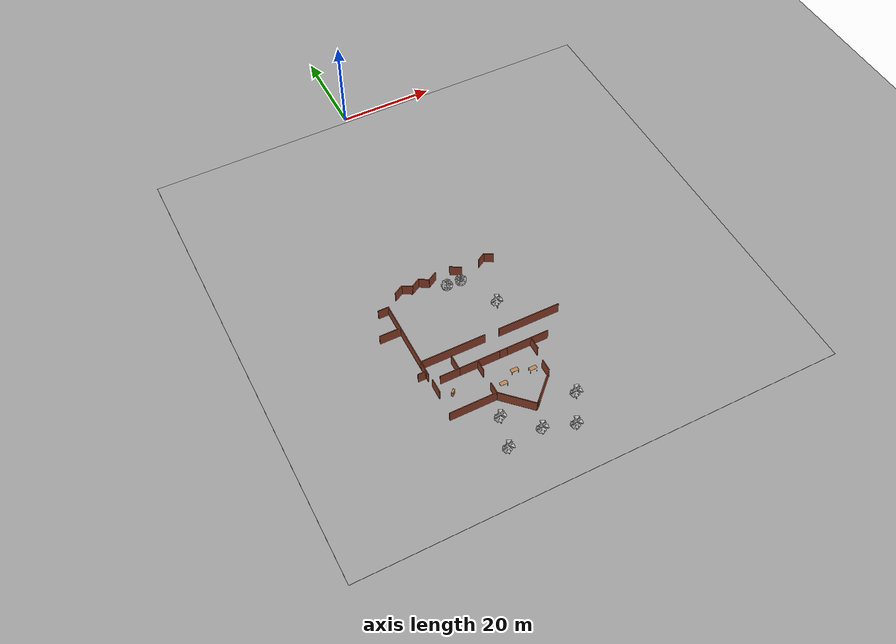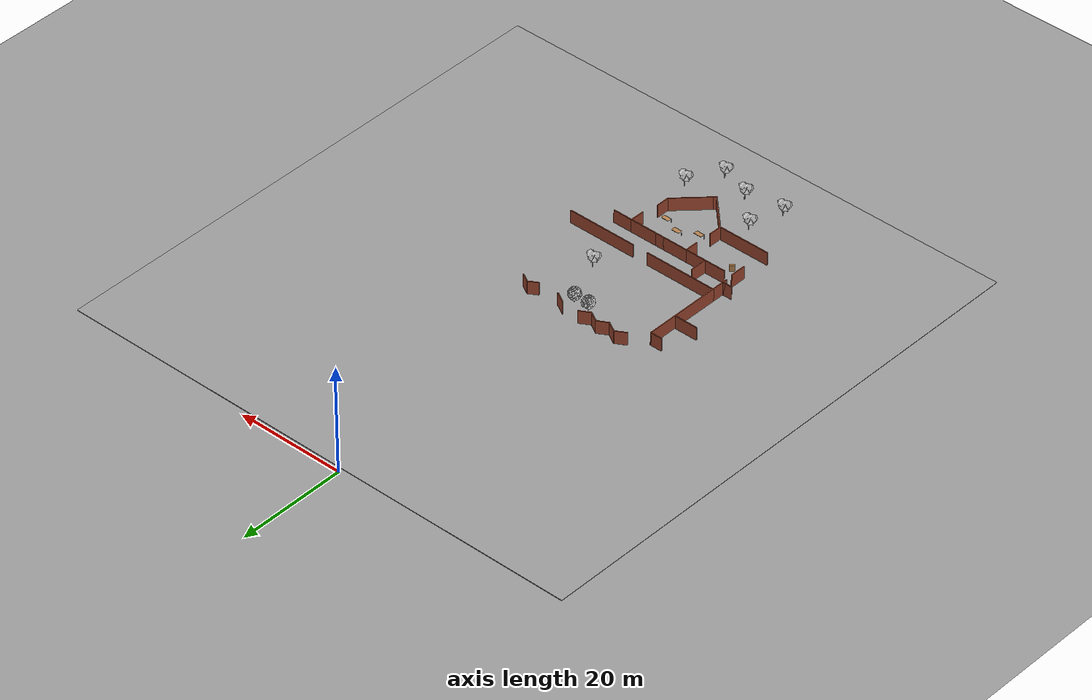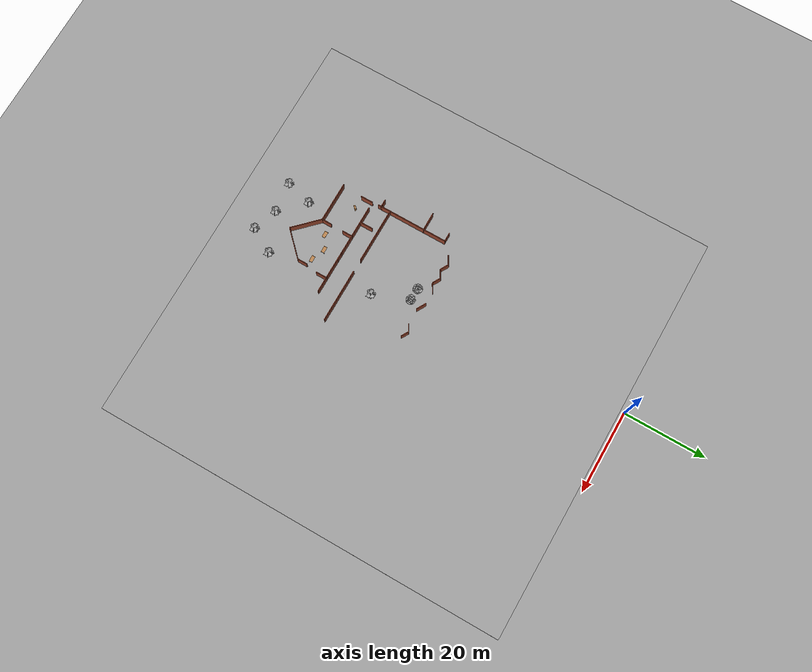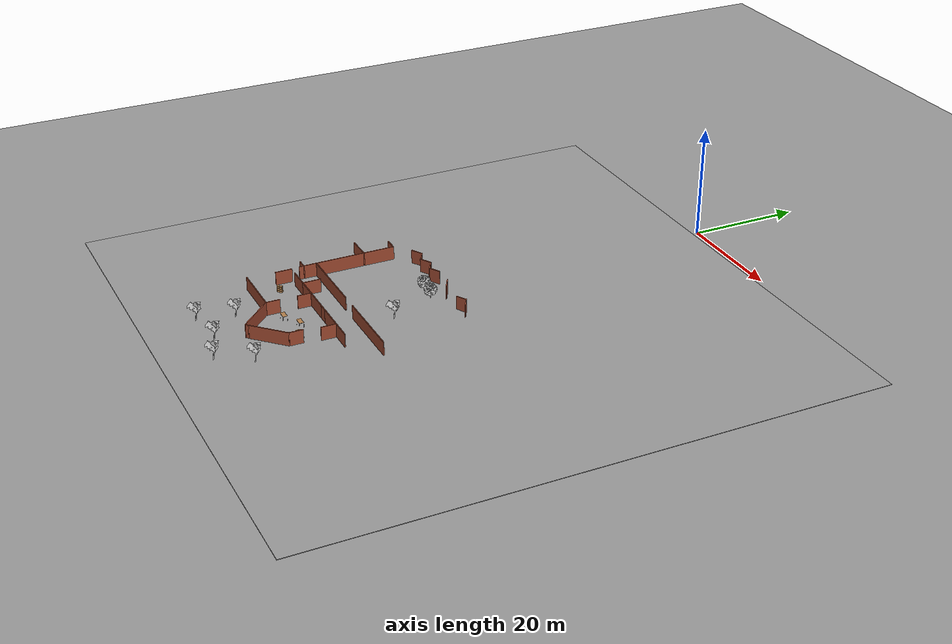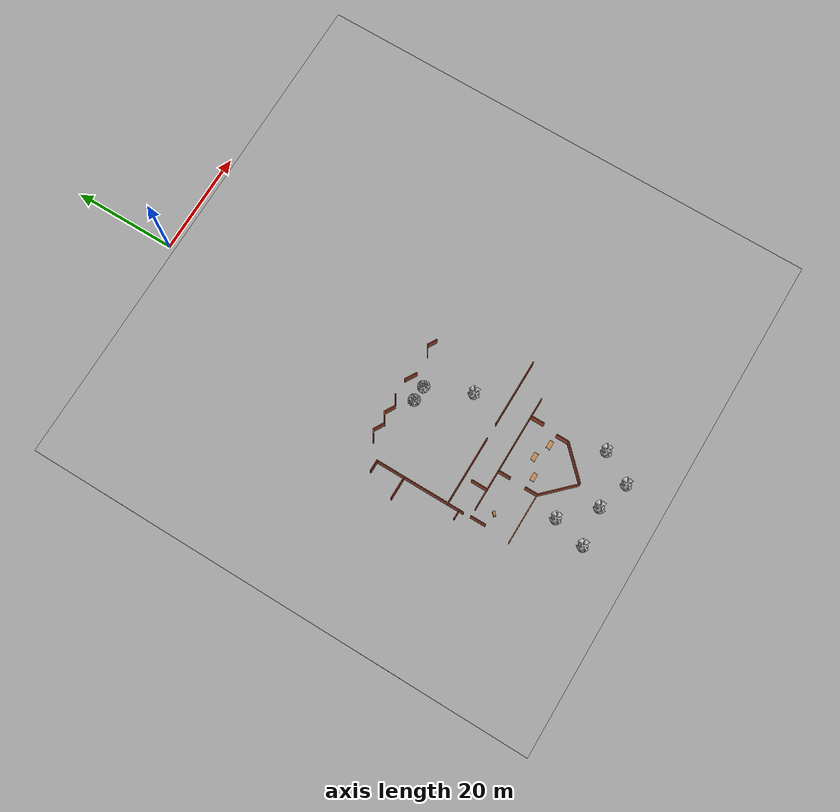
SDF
<sdf version="1.6">
 <world name="default">
  <model name="maze_rect_3">
   <pose>4e-06 -9.9e-05 0 0 -0 1.57001</pose>
   <link name="Wall_30">
    <collision name="Wall_30_Collision">
     <geometry><box><size>2 0.15 2.5</size></box></geometry>
     <pose>0 0 1.25 0 -0 0</pose>
    </collision>
    <visual name="Wall_30_Visual">
     <pose>0 0 1.25 0 -0 0</pose>
     <geometry><box><size>2 0.15 2.5</size></box></geometry>
     <material>
      <script><uri>file://media/materials/scripts/gazebo.material</uri><name>Gazebo/Bricks</name></script>
      <ambient>1 1 1 1</ambient>
     </material>
     <meta><layer>0</layer></meta>
    </visual>
    <pose>-50.7568 -8.90015 0 0 -0 1.0472</pose>
   </link>
   <link name="Wall_31">
    <collision name="Wall_31_Collision">
     <geometry><box><size>2 0.15 2.5</size></box></geometry>
     <pose>0 0 1.25 0 -0 0</pose>
    </collision>
    <visual name="Wall_31_Visual">
     <pose>0 0 1.25 0 -0 0</pose>
     <geometry><box><size>2 0.15 2.5</size></box></geometry>
     <material>
      <script><uri>file://media/materials/scripts/gazebo.material</uri><name>Gazebo/Bricks</name></script>
      <ambient>1 1 1 1</ambient>
     </material>
     <meta><layer>0</layer></meta>
    </visual>
    <pose>-50.7568 -7.298 0 0 -0 2.0944</pose>
   </link>
   <link name="Wall_34">
    <collision name="Wall_34_Collision">
     <geometry><box><size>2.5 0.15 2.5</size></box></geometry>
     <pose>0 0 1.25 0 -0 0</pose>
    </collision>
    <visual name="Wall_34_Visual">
     <pose>0 0 1.25 0 -0 0</pose>
     <geometry><box><size>2.5 0.15 2.5</size></box></geometry>
     <material>
      <script><uri>file://media/materials/scripts/gazebo.material</uri><name>Gazebo/Bricks</name></script>
      <ambient>1 1 1 1</ambient>
     </material>
     <meta><layer>0</layer></meta>
    </visual>
    <pose>-50.7568 -1.62553 0 0 -0 1.0472</pose>
   </link>
   <link name="Wall_37">
    <collision name="Wall_37_Collision">
     <geometry><box><size>2.25 0.15 2.5</size></box></geometry>
     <pose>0 0 1.25 0 -0 0</pose>
    </collision>
    <visual name="Wall_37_Visual">
     <pose>0 0 1.25 0 -0 0</pose>
     <geometry><box><size>2.25 0.15 2.5</size></box></geometry>
     <material>
      <script><uri>file://media/materials/scripts/gazebo.material</uri><name>Gazebo/Bricks</name></script>
      <ambient>1 1 1 1</ambient>
     </material>
     <meta><layer>0</layer></meta>
    </visual>
    <pose>-50.6943 3.50567 0 0 -0 2.0944</pose>
   </link>
   <link name="Wall_38">
    <collision name="Wall_38_Collision">
     <geometry><box><size>2.25 0.15 2.5</size></box></geometry>
     <pose>0 0 1.25 0 -0 0</pose>
    </collision>
    <visual name="Wall_38_Visual">
     <pose>0 0 1.25 0 -0 0</pose>
     <geometry><box><size>2.25 0.15 2.5</size></box></geometry>
     <material>
      <script><uri>file://media/materials/scripts/gazebo.material</uri><name>Gazebo/Bricks</name></script>
      <ambient>1 1 1 1</ambient>
     </material>
     <meta><layer>0</layer></meta>
    </visual>
    <pose>-50.6943 5.32432 0 0 -0 1.0472</pose>
   </link>
   <link name="Wall_39">
    <collision name="Wall_39_Collision">
     <geometry><box><size>2.25 0.15 2.5</size></box></geometry>
     <pose>0 0 1.25 0 -0 0</pose>
    </collision>
    <visual name="Wall_39_Visual">
     <pose>0 0 1.25 0 -0 0</pose>
     <geometry><box><size>2.25 0.15 2.5</size></box></geometry>
     <material>
      <script><uri>file://media/materials/scripts/gazebo.material</uri><name>Gazebo/Bricks</name></script>
      <ambient>1 1 1 1</ambient>
     </material>
     <meta><layer>0</layer></meta>
    </visual>
    <pose>-50.6943 7.14297 0 0 -0 2.0944</pose>
   </link>
   <link name="Wall_40">
    <collision name="Wall_40_Collision">
     <geometry><box><size>2.25 0.15 2.5</size></box></geometry>
     <pose>0 0 1.25 0 -0 0</pose>
    </collision>
    <visual name="Wall_40_Visual">
     <pose>0 0 1.25 0 -0 0</pose>
     <geometry><box><size>2.25 0.15 2.5</size></box></geometry>
     <material>
      <script><uri>file://media/materials/scripts/gazebo.material</uri><name>Gazebo/Bricks</name></script>
      <ambient>1 1 1 1</ambient>
     </material>
     <meta><layer>0</layer></meta>
    </visual>
    <pose>-50.6943 8.96163 0 0 -0 1.0472</pose>
   </link>
   <link name="Wall_41">
    <collision name="Wall_41_Collision">
     <geometry><box><size>2.25 0.15 2.5</size></box></geometry>
     <pose>0 0 1.25 0 -0 0</pose>
    </collision>
    <visual name="Wall_41_Visual">
     <pose>0 0 1.25 0 -0 0</pose>
     <geometry><box><size>2.25 0.15 2.5</size></box></geometry>
     <material>
      <script><uri>file://media/materials/scripts/gazebo.material</uri><name>Gazebo/Bricks</name></script>
      <ambient>1 1 1 1</ambient>
     </material>
     <meta><layer>0</layer></meta>
    </visual>
    <pose>-50.6943 10.7803 0 0 -0 2.0944</pose>
   </link>
   <static>1</static>
  </model>
  <model name="map_palace_v2_model_1_0">
   <pose>-3.1e-05 -55 0 0 -0 3.14</pose>
   <link name="Wall_203">
    <collision name="Wall_203_Collision">
     <geometry><box><size>3.75 0.15 2.5</size></box></geometry>
     <pose>0 0 1.25 0 -0 0</pose>
    </collision>
    <visual name="Wall_203_Visual">
     <pose>0 0 1.25 0 -0 0</pose>
     <geometry><box><size>3.75 0.15 2.5</size></box></geometry>
     <material>
      <script><uri>file://media/materials/scripts/gazebo.material</uri><name>Gazebo/Bricks</name></script>
      <ambient>1 1 1 1</ambient>
     </material>
     <meta><layer>0</layer></meta>
    </visual>
    <pose>-8.18806 17.5809 0 0 -0 0</pose>
   </link>
   <link name="Wall_204">
    <collision name="Wall_204_Collision">
     <geometry><box><size>2.75 0.15 2.5</size></box></geometry>
     <pose>0 0 1.25 0 -0 0</pose>
    </collision>
    <visual name="Wall_204_Visual">
     <pose>0 0 1.25 0 -0 0</pose>
     <geometry><box><size>2.75 0.15 2.5</size></box></geometry>
     <material>
      <script><uri>file://media/materials/scripts/gazebo.material</uri><name>Gazebo/Bricks</name></script>
      <ambient>1 1 1 1</ambient>
     </material>
     <meta><layer>0</layer></meta>
    </visual>
    <pose>-6.38806 18.8809 0 0 -0 1.5708</pose>
   </link>
   <link name="Wall_206">
    <collision name="Wall_206_Collision">
     <geometry><box><size>5.25 0.15 2.5</size></box></geometry>
     <pose>0 0 1.25 0 -0 0</pose>
    </collision>
    <visual name="Wall_206_Visual">
     <pose>0 0 1.25 0 -0 0</pose>
     <geometry><box><size>5.25 0.15 2.5</size></box></geometry>
     <material>
      <script><uri>file://media/materials/scripts/gazebo.material</uri><name>Gazebo/Bricks</name></script>
      <ambient>1 1 1 1</ambient>
     </material>
     <meta><layer>0</layer></meta>
    </visual>
    <pose>-3.83806 17.5809 0 0 -0 0</pose>
   </link>
   <link name="Wall_208">
    <collision name="Wall_208_Collision">
     <geometry><box><size>1.75 0.15 2.5</size></box></geometry>
     <pose>0 0 1.25 0 -0 0</pose>
    </collision>
    <visual name="Wall_208_Visual">
     <pose>0 0 1.25 0 -0 0</pose>
     <geometry><box><size>1.75 0.15 2.5</size></box></geometry>
     <material>
      <script><uri>file://media/materials/scripts/gazebo.material</uri><name>Gazebo/Bricks</name></script>
      <ambient>1 1 1 1</ambient>
     </material>
     <meta><layer>0</layer></meta>
    </visual>
    <pose>-0.488058 17.5809 0 0 -0 0</pose>
   </link>
   <link name="Wall_209">
    <collision name="Wall_209_Collision">
     <geometry><box><size>4.75 0.15 2.5</size></box></geometry>
     <pose>0 0 1.25 0 -0 0</pose>
    </collision>
    <visual name="Wall_209_Visual">
     <pose>0 0 1.25 0 -0 0</pose>
     <geometry><box><size>4.75 0.15 2.5</size></box></geometry>
     <material>
      <script><uri>file://media/materials/scripts/gazebo.material</uri><name>Gazebo/Bricks</name></script>
      <ambient>1 1 1 1</ambient>
     </material>
     <meta><layer>0</layer></meta>
    </visual>
    <pose>2.61194 17.5809 0 0 -0 0</pose>
   </link>
   <link name="Wall_210">
    <collision name="Wall_210_Collision">
     <geometry><box><size>2.5 0.15 2.5</size></box></geometry>
     <pose>0 0 1.25 0 -0 0</pose>
    </collision>
    <visual name="Wall_210_Visual">
     <pose>0 0 1.25 0 -0 0</pose>
     <geometry><box><size>2.5 0.15 2.5</size></box></geometry>
     <material>
      <script><uri>file://media/materials/scripts/gazebo.material</uri><name>Gazebo/Bricks</name></script>
      <ambient>1 1 1 1</ambient>
     </material>
     <meta><layer>0</layer></meta>
    </visual>
    <pose>4.91194 18.7559 0 0 -0 1.5708</pose>
   </link>
   <link name="Wall_212">
    <collision name="Wall_212_Collision">
     <geometry><box><size>4 0.15 2.5</size></box></geometry>
     <pose>0 0 1.25 0 -0 0</pose>
    </collision>
    <visual name="Wall_212_Visual">
     <pose>0 0 1.25 0 -0 0</pose>
     <geometry><box><size>4 0.15 2.5</size></box></geometry>
     <material>
      <script><uri>file://media/materials/scripts/gazebo.material</uri><name>Gazebo/Bricks</name></script>
      <ambient>1 1 1 1</ambient>
     </material>
     <meta><layer>0</layer></meta>
    </visual>
    <pose>6.83694 17.5809 0 0 -0 0</pose>
   </link>
   <link name="Wall_213">
    <collision name="Wall_213_Collision">
     <geometry><box><size>3.25 0.15 2.5</size></box></geometry>
     <pose>0 0 1.25 0 -0 0</pose>
    </collision>
    <visual name="Wall_213_Visual">
     <pose>0 0 1.25 0 -0 0</pose>
     <geometry><box><size>3.25 0.15 2.5</size></box></geometry>
     <material>
      <script><uri>file://media/materials/scripts/gazebo.material</uri><name>Gazebo/Bricks</name></script>
      <ambient>1 1 1 1</ambient>
     </material>
     <meta><layer>0</layer></meta>
    </visual>
    <pose>8.76194 16.0309 0 0 -0 -1.5708</pose>
   </link>
   <link name="Wall_215">
    <collision name="Wall_215_Collision">
     <geometry><box><size>4 0.15 2.5</size></box></geometry>
     <pose>0 0 1.25 0 -0 0</pose>
    </collision>
    <visual name="Wall_215_Visual">
     <pose>0 0 1.25 0 -0 0</pose>
     <geometry><box><size>4 0.15 2.5</size></box></geometry>
     <material>
      <script><uri>file://media/materials/scripts/gazebo.material</uri><name>Gazebo/Bricks</name></script>
      <ambient>1 1 1 1</ambient>
     </material>
     <meta><layer>0</layer></meta>
    </visual>
    <pose>10.6869 17.5809 0 0 -0 0</pose>
   </link>
   <link name="Wall_217">
    <collision name="Wall_217_Collision">
     <geometry><box><size>3 0.15 2.5</size></box></geometry>
     <pose>0 0 1.25 0 -0 0</pose>
    </collision>
    <visual name="Wall_217_Visual">
     <pose>0 0 1.25 0 -0 0</pose>
     <geometry><box><size>3 0.15 2.5</size></box></geometry>
     <material>
      <script><uri>file://media/materials/scripts/gazebo.material</uri><name>Gazebo/Bricks</name></script>
      <ambient>1 1 1 1</ambient>
     </material>
     <meta><layer>0</layer></meta>
    </visual>
    <pose>14.2119 19.0059 0 0 -0 1.5708</pose>
   </link>
   <link name="Wall_221">
    <collision name="Wall_221_Collision">
     <geometry><box><size>3.25 0.15 2.5</size></box></geometry>
     <pose>0 0 1.25 0 -0 0</pose>
    </collision>
    <visual name="Wall_221_Visual">
     <pose>0 0 1.25 0 -0 0</pose>
     <geometry><box><size>3.25 0.15 2.5</size></box></geometry>
     <material>
      <script><uri>file://media/materials/scripts/gazebo.material</uri><name>Gazebo/Bricks</name></script>
      <ambient>1 1 1 1</ambient>
     </material>
     <meta><layer>0</layer></meta>
    </visual>
    <pose>14.3807 14.5475 0 0 -0 1.5708</pose>
   </link>
   <link name="Wall_223">
    <collision name="Wall_223_Collision">
     <geometry><box><size>0.5 0.15 2.5</size></box></geometry>
     <pose>0 0 1.25 0 -0 0</pose>
    </collision>
    <visual name="Wall_223_Visual">
     <pose>0 0 1.25 0 -0 0</pose>
     <geometry><box><size>0.5 0.15 2.5</size></box></geometry>
     <material>
      <script><uri>file://media/materials/scripts/gazebo.material</uri><name>Gazebo/Bricks</name></script>
      <ambient>1 1 1 1</ambient>
     </material>
     <meta><layer>0</layer></meta>
    </visual>
    <pose>14.5415 15.308 0 0 -0 0</pose>
   </link>
   <link name="Wall_224">
    <collision name="Wall_224_Collision">
     <geometry><box><size>1.5 0.15 2.5</size></box></geometry>
     <pose>0 0 1.25 0 -0 0</pose>
    </collision>
    <visual name="Wall_224_Visual">
     <pose>0 0 1.25 0 -0 0</pose>
     <geometry><box><size>1.5 0.15 2.5</size></box></geometry>
     <material>
      <script><uri>file://media/materials/scripts/gazebo.material</uri><name>Gazebo/Bricks</name></script>
      <ambient>1 1 1 1</ambient>
     </material>
     <meta><layer>0</layer></meta>
    </visual>
    <pose>15.3915 15.308 0 0 -0 0</pose>
   </link>
   <link name="Wall_23">
    <collision name="Wall_23_Collision">
     <geometry><box><size>13 0.15 2.5</size></box></geometry>
     <pose>0 0 1.25 0 -0 0</pose>
    </collision>
    <visual name="Wall_23_Visual">
     <pose>0 0 1.25 0 -0 0</pose>
     <geometry><box><size>13 0.15 2.5</size></box></geometry>
     <material>
      <script><uri>file://media/materials/scripts/gazebo.material</uri><name>Gazebo/Bricks</name></script>
      <ambient>1 1 1 1</ambient>
     </material>
     <meta><layer>0</layer></meta>
    </visual>
    <pose>-8.49431 12.9975 0 0 -0 0</pose>
   </link>
   <link name="Wall_235">
    <collision name="Wall_235_Collision">
     <geometry><box><size>4.5 0.15 2.5</size></box></geometry>
     <pose>0 0 1.25 0 -0 0</pose>
    </collision>
    <visual name="Wall_235_Visual">
     <pose>0 0 1.25 0 -0 0</pose>
     <geometry><box><size>4.5 0.15 2.5</size></box></geometry>
     <material>
      <script><uri>file://media/materials/scripts/gazebo.material</uri><name>Gazebo/Bricks</name></script>
      <ambient>1 1 1 1</ambient>
     </material>
     <meta><layer>0</layer></meta>
    </visual>
    <pose>16.5435 4.20704 0 0 -0 0</pose>
   </link>
   <link name="Wall_238">
    <collision name="Wall_238_Collision">
     <geometry><box><size>2.5 0.15 2.5</size></box></geometry>
     <pose>0 0 1.25 0 -0 0</pose>
    </collision>
    <visual name="Wall_238_Visual">
     <pose>0 0 1.25 0 -0 0</pose>
     <geometry><box><size>2.5 0.15 2.5</size></box></geometry>
     <material>
      <script><uri>file://media/materials/scripts/gazebo.material</uri><name>Gazebo/Bricks</name></script>
      <ambient>1 1 1 1</ambient>
     </material>
     <meta><layer>0</layer></meta>
    </visual>
    <pose>-5.81931 24.2725 0 0 -0 -1.5708</pose>
   </link>
   <link name="Wall_240">
    <collision name="Wall_240_Collision">
     <geometry><box><size>2.5 0.15 2.5</size></box></geometry>
     <pose>0 0 1.25 0 -0 0</pose>
    </collision>
    <visual name="Wall_240_Visual">
     <pose>0 0 1.25 0 -0 0</pose>
     <geometry><box><size>2.5 0.15 2.5</size></box></geometry>
     <material>
      <script><uri>file://media/materials/scripts/gazebo.material</uri><name>Gazebo/Bricks</name></script>
      <ambient>1 1 1 1</ambient>
     </material>
     <meta><layer>0</layer></meta>
    </visual>
    <pose>5.03069 24.2725 0 0 -0 -1.5708</pose>
   </link>
   <link name="Wall_242">
    <collision name="Wall_242_Collision">
     <geometry><box><size>0.726635 0.15 2.5</size></box></geometry>
     <pose>0 0 1.25 0 -0 0</pose>
    </collision>
    <visual name="Wall_242_Visual">
     <pose>0 0 1.25 0 -0 0</pose>
     <geometry><box><size>0.726635 0.15 2.5</size></box></geometry>
     <material>
      <script><uri>file://media/materials/scripts/gazebo.material</uri><name>Gazebo/Bricks</name></script>
      <ambient>1 1 1 1</ambient>
     </material>
     <meta><layer>0</layer></meta>
    </visual>
    <pose>-0.571086 30.6447 0 0 -0 0.660019</pose>
   </link>
   <link name="Wall_25">
    <collision name="Wall_25_Collision">
     <geometry><box><size>13.5 0.15 2.5</size></box></geometry>
     <pose>0 0 1.25 0 -0 0</pose>
    </collision>
    <visual name="Wall_25_Visual">
     <pose>0 0 1.25 0 -0 0</pose>
     <geometry><box><size>13.5 0.15 2.5</size></box></geometry>
     <material>
      <script><uri>file://media/materials/scripts/gazebo.material</uri><name>Gazebo/Bricks</name></script>
      <ambient>1 1 1 1</ambient>
     </material>
     <meta><layer>0</layer></meta>
    </visual>
    <pose>7.70569 12.9975 0 0 -0 0</pose>
   </link>
   <link name="Wall_26">
    <collision name="Wall_26_Collision">
     <geometry><box><size>14.5 0.15 2.5</size></box></geometry>
     <pose>0 0 1.25 0 -0 0</pose>
    </collision>
    <visual name="Wall_26_Visual">
     <pose>0 0 1.25 0 -0 0</pose>
     <geometry><box><size>14.5 0.15 2.5</size></box></geometry>
     <material>
      <script><uri>file://media/materials/scripts/gazebo.material</uri><name>Gazebo/Bricks</name></script>
      <ambient>1 1 1 1</ambient>
     </material>
     <meta><layer>0</layer></meta>
    </visual>
    <pose>14.3807 5.82246 0 0 -0 -1.5708</pose>
   </link>
   <link name="Wall_27">
    <collision name="Wall_27_Collision">
     <geometry><box><size>2.25 0.15 2.5</size></box></geometry>
     <pose>0 0 1.25 0 -0 0</pose>
    </collision>
    <visual name="Wall_27_Visual">
     <pose>0 0 1.25 0 -0 0</pose>
     <geometry><box><size>2.25 0.15 2.5</size></box></geometry>
     <material>
      <script><uri>file://media/materials/scripts/gazebo.material</uri><name>Gazebo/Bricks</name></script>
      <ambient>1 1 1 1</ambient>
     </material>
     <meta><layer>0</layer></meta>
    </visual>
    <pose>15.4307 -1.35254 0 0 -0 0</pose>
   </link>
   <link name="Wall_41">
    <collision name="Wall_41_Collision">
     <geometry><box><size>9.75 0.15 2.5</size></box></geometry>
     <pose>0 0 1.25 0 -0 0</pose>
    </collision>
    <visual name="Wall_41_Visual">
     <pose>0 0 1.25 0 -0 0</pose>
     <geometry><box><size>9.75 0.15 2.5</size></box></geometry>
     <material>
      <script><uri>file://media/materials/scripts/gazebo.material</uri><name>Gazebo/Bricks</name></script>
      <ambient>1 1 1 1</ambient>
     </material>
     <meta><layer>0</layer></meta>
    </visual>
    <pose>9.83069 25.4475 0 0 -0 3.14159</pose>
   </link>
   <link name="Wall_42">
    <collision name="Wall_42_Collision">
     <geometry><box><size>7.75 0.15 2.5</size></box></geometry>
     <pose>0 0 1.25 0 -0 0</pose>
    </collision>
    <visual name="Wall_42_Visual">
     <pose>0 0 1.25 0 -0 0</pose>
     <geometry><box><size>7.75 0.15 2.5</size></box></geometry>
     <material>
      <script><uri>file://media/materials/scripts/gazebo.material</uri><name>Gazebo/Bricks</name></script>
      <ambient>1 1 1 1</ambient>
     </material>
     <meta><layer>0</layer></meta>
    </visual>
    <pose>2.34368 28.1345 0 0 -0 2.35619</pose>
   </link>
   <link name="Wall_6">
    <collision name="Wall_6_Collision">
     <geometry><box><size>7.25 0.15 2.5</size></box></geometry>
     <pose>0 0 1.25 0 -0 0</pose>
    </collision>
    <visual name="Wall_6_Visual">
     <pose>0 0 1.25 0 -0 0</pose>
     <geometry><box><size>7.25 0.15 2.5</size></box></geometry>
     <material>
      <script><uri>file://media/materials/scripts/gazebo.material</uri><name>Gazebo/Bricks</name></script>
      <ambient>1 1 1 1</ambient>
     </material>
     <meta><layer>0</layer></meta>
    </visual>
    <pose>-3.30908 27.9577 0 0 -0 -2.35619</pose>
   </link>
   <static>1</static>
  </model>
  <model name="table">
   <static>1</static>
   <link name="link">
    <collision name="surface">
     <pose>0 0 1 0 -0 0</pose>
     <geometry><box><size>1.5 0.8 0.03</size></box></geometry>
     <surface><friction><ode><mu>0.6</mu><mu2>0.6</mu2></ode></friction></surface>
    </collision>
    <visual name="visual1">
     <pose>0 0 1 0 -0 0</pose>
     <geometry><box><size>1.5 0.8 0.03</size></box></geometry>
     <material>
      <script><uri>file://media/materials/scripts/gazebo.material</uri><name>Gazebo/Wood</name></script>
     </material>
    </visual>
    <collision name="front_left_leg">
     <pose>0.68 0.38 0.5 0 -0 0</pose>
     <geometry><cylinder><radius>0.02</radius><length>1</length></cylinder></geometry>
    </collision>
    <visual name="front_left_leg">
     <pose>0.68 0.38 0.5 0 -0 0</pose>
     <geometry><cylinder><radius>0.02</radius><length>1</length></cylinder></geometry>
     <material>
      <script><uri>file://media/materials/scripts/gazebo.material</uri><name>Gazebo/Grey</name></script>
     </material>
    </visual>
    <collision name="front_right_leg">
     <pose>0.68 -0.38 0.5 0 -0 0</pose>
     <geometry><cylinder><radius>0.02</radius><length>1</length></cylinder></geometry>
    </collision>
    <visual name="front_right_leg">
     <pose>0.68 -0.38 0.5 0 -0 0</pose>
     <geometry><cylinder><radius>0.02</radius><length>1</length></cylinder></geometry>
     <material>
      <script><uri>file://media/materials/scripts/gazebo.material</uri><name>Gazebo/Grey</name></script>
     </material>
    </visual>
    <collision name="back_right_leg">
     <pose>-0.68 -0.38 0.5 0 -0 0</pose>
     <geometry><cylinder><radius>0.02</radius><length>1</length></cylinder></geometry>
    </collision>
    <visual name="back_right_leg">
     <pose>-0.68 -0.38 0.5 0 -0 0</pose>
     <geometry><cylinder><radius>0.02</radius><length>1</length></cylinder></geometry>
     <material>
      <script><uri>file://media/materials/scripts/gazebo.material</uri><name>Gazebo/Grey</name></script>
     </material>
    </visual>
    <collision name="back_left_leg">
     <pose>-0.68 0.38 0.5 0 -0 0</pose>
     <geometry><cylinder><radius>0.02</radius><length>1</length></cylinder></geometry>
    </collision>
    <visual name="back_left_leg">
     <pose>-0.68 0.38 0.5 0 -0 0</pose>
     <geometry><cylinder><radius>0.02</radius><length>1</length></cylinder></geometry>
     <material>
      <script><uri>file://media/materials/scripts/gazebo.material</uri><name>Gazebo/Grey</name></script>
     </material>
    </visual>
   </link>
   <pose>0.611236 -76.6859 0 0 -0 0</pose>
  </model>
  <model name="table_0">
   <static>1</static>
   <link name="link">
    <collision name="surface">
     <pose>0 0 1 0 -0 0</pose>
     <geometry><box><size>1.5 0.8 0.03</size></box></geometry>
     <surface><friction><ode><mu>0.6</mu><mu2>0.6</mu2></ode></friction></surface>
    </collision>
    <visual name="visual1">
     <pose>0 0 1 0 -0 0</pose>
     <geometry><box><size>1.5 0.8 0.03</size></box></geometry>
     <material>
      <script><uri>file://media/materials/scripts/gazebo.material</uri><name>Gazebo/Wood</name></script>
     </material>
    </visual>
    <collision name="front_left_leg">
     <pose>0.68 0.38 0.5 0 -0 0</pose>
     <geometry><cylinder><radius>0.02</radius><length>1</length></cylinder></geometry>
    </collision>
    <visual name="front_left_leg">
     <pose>0.68 0.38 0.5 0 -0 0</pose>
     <geometry><cylinder><radius>0.02</radius><length>1</length></cylinder></geometry>
     <material>
      <script><uri>file://media/materials/scripts/gazebo.material</uri><name>Gazebo/Grey</name></script>
     </material>
    </visual>
    <collision name="front_right_leg">
     <pose>0.68 -0.38 0.5 0 -0 0</pose>
     <geometry><cylinder><radius>0.02</radius><length>1</length></cylinder></geometry>
    </collision>
    <visual name="front_right_leg">
     <pose>0.68 -0.38 0.5 0 -0 0</pose>
     <geometry><cylinder><radius>0.02</radius><length>1</length></cylinder></geometry>
     <material>
      <script><uri>file://media/materials/scripts/gazebo.material</uri><name>Gazebo/Grey</name></script>
     </material>
    </visual>
    <collision name="back_right_leg">
     <pose>-0.68 -0.38 0.5 0 -0 0</pose>
     <geometry><cylinder><radius>0.02</radius><length>1</length></cylinder></geometry>
    </collision>
    <visual name="back_right_leg">
     <pose>-0.68 -0.38 0.5 0 -0 0</pose>
     <geometry><cylinder><radius>0.02</radius><length>1</length></cylinder></geometry>
     <material>
      <script><uri>file://media/materials/scripts/gazebo.material</uri><name>Gazebo/Grey</name></script>
     </material>
    </visual>
    <collision name="back_left_leg">
     <pose>-0.68 0.38 0.5 0 -0 0</pose>
     <geometry><cylinder><radius>0.02</radius><length>1</length></cylinder></geometry>
    </collision>
    <visual name="back_left_leg">
     <pose>-0.68 0.38 0.5 0 -0 0</pose>
     <geometry><cylinder><radius>0.02</radius><length>1</length></cylinder></geometry>
     <material>
      <script><uri>file://media/materials/scripts/gazebo.material</uri><name>Gazebo/Grey</name></script>
     </material>
    </visual>
   </link>
   <pose>-2.57453 -78.3422 0 0 -0 0</pose>
  </model>
  <model name="table_1">
   <static>1</static>
   <link name="link">
    <collision name="surface">
     <pose>0 0 1 0 -0 0</pose>
     <geometry><box><size>1.5 0.8 0.03</size></box></geometry>
     <surface><friction><ode><mu>0.6</mu><mu2>0.6</mu2></ode></friction></surface>
    </collision>
    <visual name="visual1">
     <pose>0 0 1 0 -0 0</pose>
     <geometry><box><size>1.5 0.8 0.03</size></box></geometry>
     <material>
      <script><uri>file://media/materials/scripts/gazebo.material</uri><name>Gazebo/Wood</name></script>
     </material>
    </visual>
    <collision name="front_left_leg">
     <pose>0.68 0.38 0.5 0 -0 0</pose>
     <geometry><cylinder><radius>0.02</radius><length>1</length></cylinder></geometry>
    </collision>
    <visual name="front_left_leg">
     <pose>0.68 0.38 0.5 0 -0 0</pose>
     <geometry><cylinder><radius>0.02</radius><length>1</length></cylinder></geometry>
     <material>
      <script><uri>file://media/materials/scripts/gazebo.material</uri><name>Gazebo/Grey</name></script>
     </material>
    </visual>
    <collision name="front_right_leg">
     <pose>0.68 -0.38 0.5 0 -0 0</pose>
     <geometry><cylinder><radius>0.02</radius><length>1</length></cylinder></geometry>
    </collision>
    <visual name="front_right_leg">
     <pose>0.68 -0.38 0.5 0 -0 0</pose>
     <geometry><cylinder><radius>0.02</radius><length>1</length></cylinder></geometry>
     <material>
      <script><uri>file://media/materials/scripts/gazebo.material</uri><name>Gazebo/Grey</name></script>
     </material>
    </visual>
    <collision name="back_right_leg">
     <pose>-0.68 -0.38 0.5 0 -0 0</pose>
     <geometry><cylinder><radius>0.02</radius><length>1</length></cylinder></geometry>
    </collision>
    <visual name="back_right_leg">
     <pose>-0.68 -0.38 0.5 0 -0 0</pose>
     <geometry><cylinder><radius>0.02</radius><length>1</length></cylinder></geometry>
     <material>
      <script><uri>file://media/materials/scripts/gazebo.material</uri><name>Gazebo/Grey</name></script>
     </material>
    </visual>
    <collision name="back_left_leg">
     <pose>-0.68 0.38 0.5 0 -0 0</pose>
     <geometry><cylinder><radius>0.02</radius><length>1</length></cylinder></geometry>
    </collision>
    <visual name="back_left_leg">
     <pose>-0.68 0.38 0.5 0 -0 0</pose>
     <geometry><cylinder><radius>0.02</radius><length>1</length></cylinder></geometry>
     <material>
      <script><uri>file://media/materials/scripts/gazebo.material</uri><name>Gazebo/Grey</name></script>
     </material>
    </visual>
   </link>
   <pose>3.85671 -77.9275 0 0 -0 0</pose>
  </model>
  <model name="our_desk_1">
   <link name="link_1">
    <inertial>
     <mass>1</mass>
     <inertia>
      <ixx>0.166667</ixx>
      <ixy>0</ixy>
      <ixz>0</ixz>
      <iyy>0.166667</iyy>
      <iyz>0</iyz>
      <izz>0.166667</izz>
     </inertia>
    </inertial>
    <pose>3.3e-05 1e-06 0 1.56254 -0 0</pose>
   </link>
   <static>0</static>
   <pose>-3.05061 -54.1661 -3.25249e+06 0 -0 0</pose>
  </model>
  <model name="tree3_clone_4">
   <link name="link_1">
    <inertial>
     <mass>1</mass>
     <inertia>
      <ixx>0.166667</ixx>
      <ixy>0</ixy>
      <ixz>0</ixz>
      <iyy>0.166667</iyy>
      <iyz>0</iyz>
      <izz>0.166667</izz>
     </inertia>
    </inertial>
    <visual name="visual">
     <geometry><mesh><uri>model://tree3/Palmera.obj</uri><scale>1 1 1</scale></mesh></geometry>
    </visual>
    <collision name="collision">
     <geometry><mesh><uri>model://tree3/Palmera.obj</uri><scale>1 1 1</scale></mesh></geometry>
     <surface>
      <friction>
       <ode><mu>1</mu><mu2>1</mu2><fdir1>0 0 0</fdir1><slip1>0</slip1><slip2>0</slip2></ode>
       <torsional>
        <coefficient>1</coefficient>
        <patch_radius>0</patch_radius>
        <surface_radius>0</surface_radius>
        <use_patch_radius>1</use_patch_radius>
        <ode><slip>0</slip></ode>
       </torsional>
      </friction>
      <bounce><restitution_coefficient>0</restitution_coefficient><threshold>1e+06</threshold></bounce>
      <contact>
       <collide_without_contact>0</collide_without_contact>
       <collide_without_contact_bitmask>1</collide_without_contact_bitmask>
       <collide_bitmask>1</collide_bitmask>
       <ode>
        <soft_cfm>0</soft_cfm>
        <soft_erp>0.2</soft_erp>
        <kp>1e+13</kp>
        <kd>1</kd>
        <max_vel>0.01</max_vel>
        <min_depth>0</min_depth>
       </ode>
       <bullet>
        <split_impulse>1</split_impulse>
        <split_impulse_penetration_threshold>-0.01</split_impulse_penetration_threshold>
        <soft_cfm>0</soft_cfm>
        <soft_erp>0.2</soft_erp>
        <kp>1e+13</kp>
        <kd>1</kd>
       </bullet>
      </contact>
     </surface>
    </collision>
   </link>
   <static>1</static>
   <pose>8 -87 0 0 -0 0</pose>
  </model>
  <model name="tree3_clone_4">
   <link name="link_1">
    <inertial>
     <mass>1</mass>
     <inertia>
      <ixx>0.166667</ixx>
      <ixy>0</ixy>
      <ixz>0</ixz>
      <iyy>0.166667</iyy>
      <iyz>0</iyz>
      <izz>0.166667</izz>
     </inertia>
    </inertial>
    <visual name="visual">
     <geometry><mesh><uri>model://tree3/Palmera.obj</uri><scale>1 1 1</scale></mesh></geometry>
    </visual>
    <collision name="collision">
     <geometry><mesh><uri>model://tree3/Palmera.obj</uri><scale>1 1 1</scale></mesh></geometry>
     <surface>
      <friction>
       <ode><mu>1</mu><mu2>1</mu2><fdir1>0 0 0</fdir1><slip1>0</slip1><slip2>0</slip2></ode>
       <torsional>
        <coefficient>1</coefficient>
        <patch_radius>0</patch_radius>
        <surface_radius>0</surface_radius>
        <use_patch_radius>1</use_patch_radius>
        <ode><slip>0</slip></ode>
       </torsional>
      </friction>
      <bounce><restitution_coefficient>0</restitution_coefficient><threshold>1e+06</threshold></bounce>
      <contact>
       <collide_without_contact>0</collide_without_contact>
       <collide_without_contact_bitmask>1</collide_without_contact_bitmask>
       <collide_bitmask>1</collide_bitmask>
       <ode>
        <soft_cfm>0</soft_cfm>
        <soft_erp>0.2</soft_erp>
        <kp>1e+13</kp>
        <kd>1</kd>
        <max_vel>0.01</max_vel>
        <min_depth>0</min_depth>
       </ode>
       <bullet>
        <split_impulse>1</split_impulse>
        <split_impulse_penetration_threshold>-0.01</split_impulse_penetration_threshold>
        <soft_cfm>0</soft_cfm>
        <soft_erp>0.2</soft_erp>
        <kp>1e+13</kp>
        <kd>1</kd>
       </bullet>
      </contact>
     </surface>
    </collision>
   </link>
   <static>1</static>
   <pose>8 -87 0 0 -0 0</pose>
  </model>
  <model name="tree3_clone_8">
   <link name="link_1">
    <inertial>
     <mass>1</mass>
     <inertia>
      <ixx>0.166667</ixx>
      <ixy>0</ixy>
      <ixz>0</ixz>
      <iyy>0.166667</iyy>
      <iyz>0</iyz>
      <izz>0.166667</izz>
     </inertia>
    </inertial>
    <visual name="visual">
     <geometry><mesh><uri>model://tree3/Palmera.obj</uri><scale>1 1 1</scale></mesh></geometry>
    </visual>
    <collision name="collision">
     <geometry><mesh><uri>model://tree3/Palmera.obj</uri><scale>1 1 1</scale></mesh></geometry>
     <surface>
      <friction>
       <ode><mu>1</mu><mu2>1</mu2><fdir1>0 0 0</fdir1><slip1>0</slip1><slip2>0</slip2></ode>
       <torsional>
        <coefficient>1</coefficient>
        <patch_radius>0</patch_radius>
        <surface_radius>0</surface_radius>
        <use_patch_radius>1</use_patch_radius>
        <ode><slip>0</slip></ode>
       </torsional>
      </friction>
      <bounce><restitution_coefficient>0</restitution_coefficient><threshold>1e+06</threshold></bounce>
      <contact>
       <collide_without_contact>0</collide_without_contact>
       <collide_without_contact_bitmask>1</collide_without_contact_bitmask>
       <collide_bitmask>1</collide_bitmask>
       <ode>
        <soft_cfm>0</soft_cfm>
        <soft_erp>0.2</soft_erp>
        <kp>1e+13</kp>
        <kd>1</kd>
        <max_vel>0.01</max_vel>
        <min_depth>0</min_depth>
       </ode>
       <bullet>
        <split_impulse>1</split_impulse>
        <split_impulse_penetration_threshold>-0.01</split_impulse_penetration_threshold>
        <soft_cfm>0</soft_cfm>
        <soft_erp>0.2</soft_erp>
        <kp>1e+13</kp>
        <kd>1</kd>
       </bullet>
      </contact>
     </surface>
    </collision>
   </link>
   <static>1</static>
   <pose>4.65834 -92.8086 0 0 -0 0</pose>
  </model>
  <model name="tree3_clone_9">
   <link name="link_1">
    <inertial>
     <mass>1</mass>
     <inertia>
      <ixx>0.166667</ixx>
      <ixy>0</ixy>
      <ixz>0</ixz>
      <iyy>0.166667</iyy>
      <iyz>0</iyz>
      <izz>0.166667</izz>
     </inertia>
    </inertial>
    <visual name="visual">
     <geometry><mesh><uri>model://tree3/Palmera.obj</uri><scale>1 1 1</scale></mesh></geometry>
    </visual>
    <collision name="collision">
     <geometry><mesh><uri>model://tree3/Palmera.obj</uri><scale>1 1 1</scale></mesh></geometry>
     <surface>
      <friction>
       <ode><mu>1</mu><mu2>1</mu2><fdir1>0 0 0</fdir1><slip1>0</slip1><slip2>0</slip2></ode>
       <torsional>
        <coefficient>1</coefficient>
        <patch_radius>0</patch_radius>
        <surface_radius>0</surface_radius>
        <use_patch_radius>1</use_patch_radius>
        <ode><slip>0</slip></ode>
       </torsional>
      </friction>
      <bounce><restitution_coefficient>0</restitution_coefficient><threshold>1e+06</threshold></bounce>
      <contact>
       <collide_without_contact>0</collide_without_contact>
       <collide_without_contact_bitmask>1</collide_without_contact_bitmask>
       <collide_bitmask>1</collide_bitmask>
       <ode>
        <soft_cfm>0</soft_cfm>
        <soft_erp>0.2</soft_erp>
        <kp>1e+13</kp>
        <kd>1</kd>
        <max_vel>0.01</max_vel>
        <min_depth>0</min_depth>
       </ode>
       <bullet>
        <split_impulse>1</split_impulse>
        <split_impulse_penetration_threshold>-0.01</split_impulse_penetration_threshold>
        <soft_cfm>0</soft_cfm>
        <soft_erp>0.2</soft_erp>
        <kp>1e+13</kp>
        <kd>1</kd>
       </bullet>
      </contact>
     </surface>
    </collision>
   </link>
   <static>1</static>
   <pose>-8.45785 -91.5449 0 0 -0 0</pose>
  </model>
  <model name="tree3_clone_25">
   <link name="link_1">
    <inertial>
     <mass>1</mass>
     <inertia>
      <ixx>0.166667</ixx>
      <ixy>0</ixy>
      <ixz>0</ixz>
      <iyy>0.166667</iyy>
      <iyz>0</iyz>
      <izz>0.166667</izz>
     </inertia>
    </inertial>
    <visual name="visual">
     <geometry><mesh><uri>model://tree3/Palmera.obj</uri><scale>1 1 1</scale></mesh></geometry>
    </visual>
    <collision name="collision">
     <geometry><mesh><uri>model://tree3/Palmera.obj</uri><scale>1 1 1</scale></mesh></geometry>
     <surface>
      <friction>
       <ode><mu>1</mu><mu2>1</mu2><fdir1>0 0 0</fdir1><slip1>0</slip1><slip2>0</slip2></ode>
       <torsional>
        <coefficient>1</coefficient>
        <patch_radius>0</patch_radius>
        <surface_radius>0</surface_radius>
        <use_patch_radius>1</use_patch_radius>
        <ode><slip>0</slip></ode>
       </torsional>
      </friction>
      <bounce><restitution_coefficient>0</restitution_coefficient><threshold>1e+06</threshold></bounce>
      <contact>
       <collide_without_contact>0</collide_without_contact>
       <collide_without_contact_bitmask>1</collide_without_contact_bitmask>
       <collide_bitmask>1</collide_bitmask>
       <ode>
        <soft_cfm>0</soft_cfm>
        <soft_erp>0.2</soft_erp>
        <kp>1e+13</kp>
        <kd>1</kd>
        <max_vel>0.01</max_vel>
        <min_depth>0</min_depth>
       </ode>
       <bullet>
        <split_impulse>1</split_impulse>
        <split_impulse_penetration_threshold>-0.01</split_impulse_penetration_threshold>
        <soft_cfm>0</soft_cfm>
        <soft_erp>0.2</soft_erp>
        <kp>1e+13</kp>
        <kd>1</kd>
       </bullet>
      </contact>
     </surface>
    </collision>
   </link>
   <static>1</static>
   <pose>-1.20002 -90.7848 0 0 -0 0</pose>
  </model>
  <model name="tree3_clone_27">
   <link name="link_1">
    <inertial>
     <mass>1</mass>
     <inertia>
      <ixx>0.166667</ixx>
      <ixy>0</ixy>
      <ixz>0</ixz>
      <iyy>0.166667</iyy>
      <iyz>0</iyz>
      <izz>0.166667</izz>
     </inertia>
    </inertial>
    <visual name="visual">
     <geometry><mesh><uri>model://tree3/Palmera.obj</uri><scale>1 1 1</scale></mesh></geometry>
    </visual>
    <collision name="collision">
     <geometry><mesh><uri>model://tree3/Palmera.obj</uri><scale>1 1 1</scale></mesh></geometry>
     <surface>
      <friction>
       <ode><mu>1</mu><mu2>1</mu2><fdir1>0 0 0</fdir1><slip1>0</slip1><slip2>0</slip2></ode>
       <torsional>
        <coefficient>1</coefficient>
        <patch_radius>0</patch_radius>
        <surface_radius>0</surface_radius>
        <use_patch_radius>1</use_patch_radius>
        <ode><slip>0</slip></ode>
       </torsional>
      </friction>
      <bounce><restitution_coefficient>0</restitution_coefficient><threshold>1e+06</threshold></bounce>
      <contact>
       <collide_without_contact>0</collide_without_contact>
       <collide_without_contact_bitmask>1</collide_without_contact_bitmask>
       <collide_bitmask>1</collide_bitmask>
       <ode>
        <soft_cfm>0</soft_cfm>
        <soft_erp>0.2</soft_erp>
        <kp>1e+13</kp>
        <kd>1</kd>
        <max_vel>0.01</max_vel>
        <min_depth>0</min_depth>
       </ode>
       <bullet>
        <split_impulse>1</split_impulse>
        <split_impulse_penetration_threshold>-0.01</split_impulse_penetration_threshold>
        <soft_cfm>0</soft_cfm>
        <soft_erp>0.2</soft_erp>
        <kp>1e+13</kp>
        <kd>1</kd>
       </bullet>
      </contact>
     </surface>
    </collision>
   </link>
   <static>1</static>
   <pose>-6.74385 -85.2852 0 0 -0 0</pose>
  </model>
  <model name="tree3_clone_34">
   <link name="link_1">
    <inertial>
     <mass>1</mass>
     <inertia>
      <ixx>0.166667</ixx>
      <ixy>0</ixy>
      <ixz>0</ixz>
      <iyy>0.166667</iyy>
      <iyz>0</iyz>
      <izz>0.166667</izz>
     </inertia>
    </inertial>
    <visual name="visual">
     <geometry><mesh><uri>model://tree3/Palmera.obj</uri><scale>1 1 1</scale></mesh></geometry>
    </visual>
    <collision name="collision">
     <geometry><mesh><uri>model://tree3/Palmera.obj</uri><scale>1 1 1</scale></mesh></geometry>
     <surface>
      <friction>
       <ode><mu>1</mu><mu2>1</mu2><fdir1>0 0 0</fdir1><slip1>0</slip1><slip2>0</slip2></ode>
       <torsional>
        <coefficient>1</coefficient>
        <patch_radius>0</patch_radius>
        <surface_radius>0</surface_radius>
        <use_patch_radius>1</use_patch_radius>
        <ode><slip>0</slip></ode>
       </torsional>
      </friction>
      <bounce><restitution_coefficient>0</restitution_coefficient><threshold>1e+06</threshold></bounce>
      <contact>
       <collide_without_contact>0</collide_without_contact>
       <collide_without_contact_bitmask>1</collide_without_contact_bitmask>
       <collide_bitmask>1</collide_bitmask>
       <ode>
        <soft_cfm>0</soft_cfm>
        <soft_erp>0.2</soft_erp>
        <kp>1e+13</kp>
        <kd>1</kd>
        <max_vel>0.01</max_vel>
        <min_depth>0</min_depth>
       </ode>
       <bullet>
        <split_impulse>1</split_impulse>
        <split_impulse_penetration_threshold>-0.01</split_impulse_penetration_threshold>
        <soft_cfm>0</soft_cfm>
        <soft_erp>0.2</soft_erp>
        <kp>1e+13</kp>
        <kd>1</kd>
       </bullet>
      </contact>
     </surface>
    </collision>
   </link>
   <static>1</static>
   <pose>5 -62 0 0 -0 0</pose>
  </model>
  <model name="tree2_14">
   <link name="link_0">
    <inertial>
     <mass>1</mass>
     <inertia>
      <ixx>0.166667</ixx>
      <ixy>0</ixy>
      <ixz>0</ixz>
      <iyy>0.166667</iyy>
      <iyz>0</iyz>
      <izz>0.166667</izz>
     </inertia>
    </inertial>
    <pose>-0 -0 0 1.58863 -0.000294 0</pose>
    <visual name="visual">
     <geometry><mesh><uri>model://tree2/Tree.obj</uri><scale>1 1 1</scale></mesh></geometry>
    </visual>
    <collision name="collision">
     <geometry><mesh><uri>model://tree2/Tree.obj</uri><scale>1 1 1</scale></mesh></geometry>
     <surface>
      <friction>
       <ode><mu>1</mu><mu2>1</mu2><fdir1>0 0 0</fdir1><slip1>0</slip1><slip2>0</slip2></ode>
       <torsional>
        <coefficient>1</coefficient>
        <patch_radius>0</patch_radius>
        <surface_radius>0</surface_radius>
        <use_patch_radius>1</use_patch_radius>
        <ode><slip>0</slip></ode>
       </torsional>
      </friction>
      <bounce><restitution_coefficient>0</restitution_coefficient><threshold>1e+06</threshold></bounce>
      <contact>
       <collide_without_contact>0</collide_without_contact>
       <collide_without_contact_bitmask>1</collide_without_contact_bitmask>
       <collide_bitmask>1</collide_bitmask>
       <ode>
        <soft_cfm>0</soft_cfm>
        <soft_erp>0.2</soft_erp>
        <kp>1e+13</kp>
        <kd>1</kd>
        <max_vel>0.01</max_vel>
        <min_depth>0</min_depth>
       </ode>
       <bullet>
        <split_impulse>1</split_impulse>
        <split_impulse_penetration_threshold>-0.01</split_impulse_penetration_threshold>
        <soft_cfm>0</soft_cfm>
        <soft_erp>0.2</soft_erp>
        <kp>1e+13</kp>
        <kd>1</kd>
       </bullet>
      </contact>
     </surface>
    </collision>
   </link>
   <static>1</static>
   <pose>1.21064 -53.6207 0 0 -0 0</pose>
  </model>
  <model name="tree2_15">
   <link name="link_0">
    <inertial>
     <mass>1</mass>
     <inertia>
      <ixx>0.166667</ixx>
      <ixy>0</ixy>
      <ixz>0</ixz>
      <iyy>0.166667</iyy>
      <iyz>0</iyz>
      <izz>0.166667</izz>
     </inertia>
    </inertial>
    <pose>-0 -0 0 1.58863 -0.000294 0</pose>
    <visual name="visual">
     <geometry><mesh><uri>model://tree2/Tree.obj</uri><scale>1 1 1</scale></mesh></geometry>
    </visual>
    <collision name="collision">
     <geometry><mesh><uri>model://tree2/Tree.obj</uri><scale>1 1 1</scale></mesh></geometry>
     <surface>
      <friction>
       <ode><mu>1</mu><mu2>1</mu2><fdir1>0 0 0</fdir1><slip1>0</slip1><slip2>0</slip2></ode>
       <torsional>
        <coefficient>1</coefficient>
        <patch_radius>0</patch_radius>
        <surface_radius>0</surface_radius>
        <use_patch_radius>1</use_patch_radius>
        <ode><slip>0</slip></ode>
       </torsional>
      </friction>
      <bounce><restitution_coefficient>0</restitution_coefficient><threshold>1e+06</threshold></bounce>
      <contact>
       <collide_without_contact>0</collide_without_contact>
       <collide_without_contact_bitmask>1</collide_without_contact_bitmask>
       <collide_bitmask>1</collide_bitmask>
       <ode>
        <soft_cfm>0</soft_cfm>
        <soft_erp>0.2</soft_erp>
        <kp>1e+13</kp>
        <kd>1</kd>
        <max_vel>0.01</max_vel>
        <min_depth>0</min_depth>
       </ode>
       <bullet>
        <split_impulse>1</split_impulse>
        <split_impulse_penetration_threshold>-0.01</split_impulse_penetration_threshold>
        <soft_cfm>0</soft_cfm>
        <soft_erp>0.2</soft_erp>
        <kp>1e+13</kp>
        <kd>1</kd>
       </bullet>
      </contact>
     </surface>
    </collision>
   </link>
   <static>1</static>
   <pose>-1.72581 -53.4431 0 0 -0 0</pose>
  </model>
  <model name="bookshelf_0">
   <static>1</static>
   <link name="link">
    <inertial><mass>1</mass></inertial>
    <collision name="back">
     <pose>0 0.005 0.6 0 -0 0</pose>
     <geometry><box><size>0.9 0.01 1.2</size></box></geometry>
    </collision>
    <visual name="visual1">
     <pose>0 0.005 0.6 0 -0 0</pose>
     <geometry><box><size>0.9 0.01 1.2</size></box></geometry>
     <material>
      <script><uri>file://media/materials/scripts/gazebo.material</uri><name>Gazebo/Wood</name></script>
     </material>
    </visual>
    <collision name="left_side">
     <pose>0.45 -0.195 0.6 0 -0 0</pose>
     <geometry><box><size>0.02 0.4 1.2</size></box></geometry>
    </collision>
    <visual name="visual2">
     <pose>0.45 -0.195 0.6 0 -0 0</pose>
     <geometry><box><size>0.02 0.4 1.2</size></box></geometry>
     <material>
      <script><uri>file://media/materials/scripts/gazebo.material</uri><name>Gazebo/Wood</name></script>
     </material>
    </visual>
    <collision name="right_side">
     <pose>-0.45 -0.195 0.6 0 -0 0</pose>
     <geometry><box><size>0.02 0.4 1.2</size></box></geometry>
    </collision>
    <visual name="visual3">
     <pose>-0.45 -0.195 0.6 0 -0 0</pose>
     <geometry><box><size>0.02 0.4 1.2</size></box></geometry>
     <material>
      <script><uri>file://media/materials/scripts/gazebo.material</uri><name>Gazebo/Wood</name></script>
     </material>
    </visual>
    <collision name="bottom">
     <pose>0 -0.195 0.03 0 -0 0</pose>
     <geometry><box><size>0.88 0.4 0.06</size></box></geometry>
    </collision>
    <visual name="visual4">
     <pose>0 -0.195 0.03 0 -0 0</pose>
     <geometry><box><size>0.88 0.4 0.06</size></box></geometry>
     <material>
      <script><uri>file://media/materials/scripts/gazebo.material</uri><name>Gazebo/Wood</name></script>
     </material>
    </visual>
    <collision name="top">
     <pose>0 -0.195 1.19 0 -0 0</pose>
     <geometry><box><size>0.88 0.4 0.02</size></box></geometry>
    </collision>
    <visual name="visual5">
     <pose>0 -0.195 1.19 0 -0 0</pose>
     <geometry><box><size>0.88 0.4 0.02</size></box></geometry>
     <material>
      <script><uri>file://media/materials/scripts/gazebo.material</uri><name>Gazebo/Wood</name></script>
     </material>
    </visual>
    <collision name="low_shelf">
     <pose>0 -0.195 0.43 0 -0 0</pose>
     <geometry><box><size>0.88 0.4 0.02</size></box></geometry>
    </collision>
    <visual name="visual6">
     <pose>0 -0.195 0.43 0 -0 0</pose>
     <geometry><box><size>0.88 0.4 0.02</size></box></geometry>
     <material>
      <script><uri>file://media/materials/scripts/gazebo.material</uri><name>Gazebo/Wood</name></script>
     </material>
    </visual>
    <collision name="high_shelf">
     <pose>0 -0.195 0.8 0 -0 0</pose>
     <geometry><box><size>0.88 0.4 0.02</size></box></geometry>
    </collision>
    <visual name="visual7">
     <pose>0 -0.195 0.8 0 -0 0</pose>
     <geometry><box><size>0.88 0.4 0.02</size></box></geometry>
     <material>
      <script><uri>file://media/materials/scripts/gazebo.material</uri><name>Gazebo/Wood</name></script>
     </material>
    </visual>
   </link>
   <pose>-11.7729 -75.5573 0 0 -0 0.762536</pose>
  </model>
  <model name="ground_plane_7">
   <static>1</static>
   <link name="link">
    <collision name="collision">
     <geometry><plane><normal>0 0 1</normal><size>100 100</size></plane></geometry>
     <surface><friction><ode><mu>100</mu><mu2>50</mu2></ode></friction></surface>
    </collision>
    <visual name="visual">
     <cast_shadows>0</cast_shadows>
     <geometry><plane><normal>0 0 1</normal><size>100 100</size></plane></geometry>
     <material>
      <script><uri>file://media/materials/scripts/gazebo.material</uri><name>Gazebo/Grey</name></script>
     </material>
    </visual>
   </link>
   <pose>-2.53402 -50.7987 0 0 -0 0</pose>
  </model>
  <model name="ground_plane_8">
   <static>1</static>
   <link name="link">
    <collision name="collision">
     <geometry><plane><normal>0 0 1</normal><size>100 100</size></plane></geometry>
     <surface><friction><ode><mu>100</mu><mu2>50</mu2></ode></friction></surface>
    </collision>
    <visual name="visual">
     <cast_shadows>0</cast_shadows>
     <geometry><plane><normal>0 0 1</normal><size>100 100</size></plane></geometry>
     <material>
      <script><uri>file://media/materials/scripts/gazebo.material</uri><name>Gazebo/Grey</name></script>
     </material>
    </visual>
   </link>
   <pose>6.29769 -50.9739 0 0 -0 0</pose>
  </model>
  <model name="ground_plane">
   <static>1</static>
   <link name="link">
    <collision name="collision">
     <geometry><plane><normal>0 0 1</normal><size>100 100</size></plane></geometry>
     <surface>
      <contact><collide_bitmask>65535</collide_bitmask></contact>
      <friction><ode><mu>100</mu><mu2>50</mu2></ode></friction>
     </surface>
    </collision>
    <visual name="visual">
     <cast_shadows>0</cast_shadows>
     <geometry><plane><normal>0 0 1</normal><size>100 100</size></plane></geometry>
     <material>
      <script><uri>file://media/materials/scripts/gazebo.material</uri><name>Gazebo/Grey</name></script>
     </material>
    </visual>
   </link>
   <pose>9.31394 52.073 0 0 -0 0</pose>
  </model>
 </world>
</sdf>
